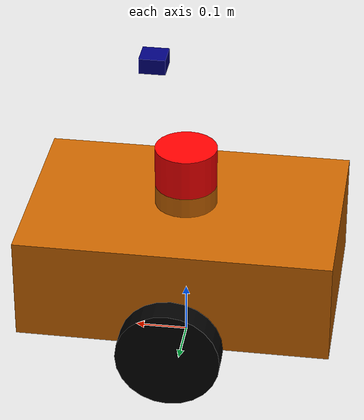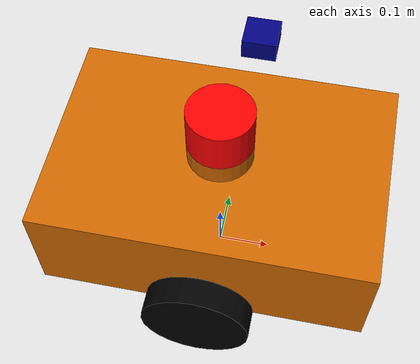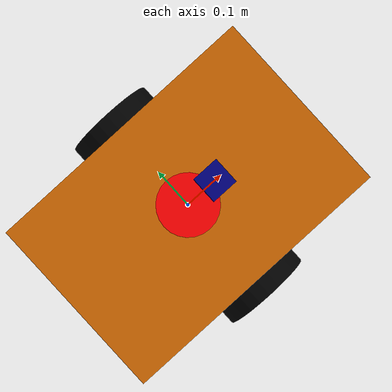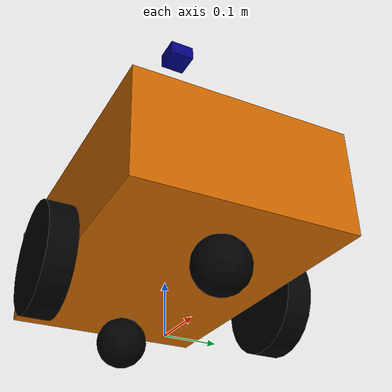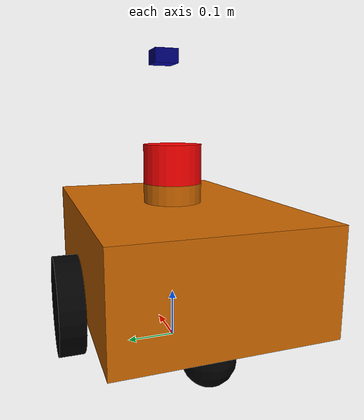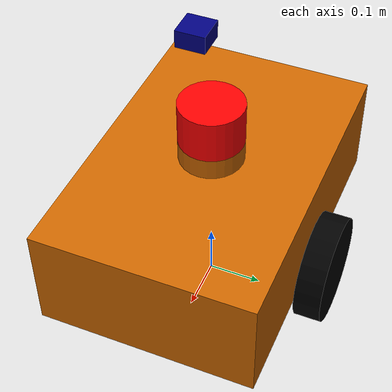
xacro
<?xml version="1.0"?>
<robot name="ros2_bot" xmlns:xacro="http://www.ros.org/wiki/xacro">

<!-- >>>>>>>>>>>>>>>>>>>>>>>>>>>  PROPERTY  <<<<<<<<<<<<<<<<<<<<<<<<<<<<< -->

    <xacro:property name="base_length" value="0.6" />
    <xacro:macro name="box_inertia" params="m x y z o_xyz o_rpy">
        <inertial>
            <mass value="${m}" />
            <origin xyz = "${o_xyz}" rpy = "${o_rpy}"/>
            <inertia ixx="${(m/12)*(y*y + z*z)}" ixy="0" ixz="0"
                     iyy="${(m/12)*(x*x + z*z)}" iyz="0"
                     izz="${(m/12)*(x*x + y*y)}"/>
        </inertial>
    </xacro:macro>

    <xacro:macro name="cylinder_inertia" params="m r l o_xyz o_rpy">
        <inertial>
            <mass value="${m}" />
            <origin xyz = "${o_xyz}" rpy = "${o_rpy}"/>
            <inertia ixx="${(m/12)*(3*r*r + l*l)}" ixy="0" ixz="0"
                     iyy="${(m/12)*(3*r*r + l*l)}" iyz="0"
                     izz="${(m/2)*(r*r)}"/>
        </inertial>
    </xacro:macro>

    <xacro:macro name="sphere_inertia" params="m r o_xyz o_rpy">
        <inertial>
            <mass value="${m}" />
            <origin xyz = "${o_xyz}" rpy = "${o_rpy}"/>
            <inertia ixx="${(2/5)*m*r*r}" ixy="0" ixz="0"
                     iyy="${(2/5)*m*r*r}" iyz="0"
                     izz="${(2/5)*m*r*r}"/>
        </inertial>
    </xacro:macro>

<!-- >>>>>>>>>>>>>>>>>>>>>>>>>>>  COLOUR  <<<<<<<<<<<<<<<<<<<<<<<<<<<<< -->

    <material name="Dark Orange">
        <color rgba="0.8 0.4 0.0 1"/>
    </material>

    <material name="Black">
        <color rgba="0 0 0 1"/>
    </material>

    <material name="Blue">
        <color rgba="0 0 0.5 1" />
    </material>

    <material name="Red">
        <color rgba="1.0 0 0 1" />
    </material>

<!-- >>>>>>>>>>>>>>>>>>>>>>>>>>>  LINK  <<<<<<<<<<<<<<<<<<<<<<<<<<<<< -->

    <link name="base_footprint" />

    <link name="base_link">
        <visual>
            <geometry>
                <box size="${base_length} 0.4 0.2" />
            </geometry>
            <origin xyz="0 0 0.1" rpy="0 0 0" />
            <material name="Dark Orange" />
        </visual>
        <collision>
            <geometry>
                <box size="${base_length} 0.4 0.2" />
            </geometry>
            <origin xyz="0 0 0.1" rpy="0 0 0" />
        </collision>
        <xacro:box_inertia m="0.1" x="${base_length}" y="0.4" z="0.2" o_xyz="0 0 1" o_rpy="0 0 0"/>
    </link>

    <link name="right_wheel_link">
        <visual>
            <geometry>
                <cylinder radius="0.1" length="0.05" />
            </geometry>
            <origin xyz="0 0 0" rpy="${pi / 2.0} 0 0" />
            <material name="Black" />
        </visual>
        <collision>
            <geometry>
                <sphere radius="0.1"/>
            </geometry>
            <origin xyz="0 0 0" rpy="${pi / 2.0} 0 0" />
        </collision>
        <xacro:cylinder_inertia m="0.5" r="0.1" l="0.05" o_xyz="0 0 0" o_rpy="${pi / 2.0} 0 0"/>
    </link>

    <link name="left_wheel_link">
        <visual>
            <geometry>
                <cylinder radius="0.1" length="0.05" />
            </geometry>
            <origin xyz="0 0 0" rpy="${pi / 2.0} 0 0" />
            <material name="Black" />
        </visual>
        <collision>
            <geometry>
                <sphere radius="0.1"/>
            </geometry>
            <origin xyz="0 0 0" rpy="${pi / 2.0} 0 0" />
        </collision>
        <xacro:cylinder_inertia m="0.5" r="0.1" l="0.05" o_xyz="0 0 0" o_rpy="${pi / 2.0} 0 0"/>
    </link>

    <link name="caster_wheel_link_1">
        <visual>
            <geometry>
                <sphere radius="0.05" />
            </geometry>
            <origin xyz="0 0 0" rpy="0 0 0" />
            <material name="Black" />
        </visual>
        <collision>
            <geometry>
                <sphere radius="0.05" />
            </geometry>
            <origin xyz="0 0 0" rpy="0 0 0" />
        </collision>
        <xacro:sphere_inertia m="0.05" r="0.05" o_xyz="0 0 0" o_rpy="0 0 0"/>
    </link>

    <link name="caster_wheel_link_2">
        <visual>
            <geometry>
                <sphere radius="0.05" />
            </geometry>
            <origin xyz="0 0 0" rpy="0 0 0" />
            <material name="Black" />
        </visual>
        <collision>
            <geometry>
                <sphere radius="0.05" />
            </geometry>
            <origin xyz="0 0 0" rpy="0 0 0" />
        </collision>
        <xacro:sphere_inertia m="0.05" r="0.05" o_xyz="0 0 0" o_rpy="0 0 0"/>
    </link>

    <link name="lidar_base">
        <visual>
            <geometry>
                <cylinder radius="0.06" length="0.08" />
            </geometry>
            <origin xyz="0 0 0" rpy="0 0 0" />
            <material name="Dark Orange" />
        </visual>
        <collision>
            <geometry>
                <cylinder radius="0.06" length="0.08"/>
            </geometry>
            <origin xyz="0 0 0" rpy="0 0 0" />
        </collision>
        <xacro:cylinder_inertia m="0.25" r="0.1" l="0.05" o_xyz="0 0 0.1" o_rpy="0 0 0"/>
    </link>

    <link name="lidar">
        <visual>
            <geometry>
                <cylinder radius="0.06" length="0.08" />
            </geometry>
            <origin xyz="0 0 0" rpy="0 0 0" />
            <material name="Red" />
        </visual>
        <collision>
            <geometry>
                <cylinder radius="0.06" length="0.08"/>
            </geometry>
            <origin xyz="0 0 0" rpy="0 0 0" />
        </collision>
        <xacro:cylinder_inertia m="0.25" r="0.1" l="0.05" o_xyz="0 0 0.1" o_rpy="0 0 0"/>
    </link>

<!-- >>>>>>>>>>>>>>>>>>>>>>>>>>>  JOINTS  <<<<<<<<<<<<<<<<<<<<<<<<<<<<< -->

    <joint name="base_joint" type="fixed">
        <parent link="base_footprint" />
        <child link="base_link" />
        <origin xyz="0 0 0.1" rpy="0 0 0"/>
    </joint>

    <joint name="base_right_wheel_joint" type="continuous">
        <parent link="base_link" />
        <child link="right_wheel_link" />
        <origin xyz="0 -0.225 0" rpy="0 0 0" />
        <axis xyz="0 1 0" />
    </joint>

    <joint name="base_left_wheel_joint" type="continuous">
        <parent link="base_link" />
        <child link="left_wheel_link" />
        <origin xyz="0 0.225 0" rpy="0 0 0" />
        <axis xyz="0 1 0" />
    </joint>

    <joint name="base_caster_wheel_1_joint" type="fixed">
        <parent link="base_link" />
        <child link="caster_wheel_link_1" />
        <origin xyz="0.2 0 -0.05" rpy="0 0 0" />
    </joint>

    <joint name="base_caster_wheel_2_joint" type="fixed">
        <parent link="base_link" />
        <child link="caster_wheel_link_2" />
        <origin xyz="-0.2 0 -0.05" rpy="0 0 0" />
    </joint>

    <joint name="lidar_base_joint" type="fixed">
        <parent link="base_link" />
        <child link="lidar_base" />
        <origin xyz="0 0 0.2" rpy="0 0 0" />
    </joint>

    <joint name="lidar_joint" type="fixed">
        <parent link="base_link" />
        <child link="lidar" />
        <origin xyz="0 0 0.28" rpy="0 0 0" />
    </joint>

<!-- >>>>>>>>>>>>>>>>>>>>>>>>>>>  CAMERA LINK AND JOINT  <<<<<<<<<<<<<<<<<<<<<<<<<<<<< -->

<!-- Simple camera link – no tilt at all -->
<link name="camera_link">
  <visual>
    <origin xyz="0 0 0" rpy="0 0 0"/>
    <geometry>
      <box size="0.05 0.05 0.03"/>
    </geometry>
    <material name="Blue"/>
  </visual>
</link>

<!-- Fixed joint – camera sits exactly on top, perfectly level -->
<joint name="camera_joint" type="fixed">
  <parent link="base_link"/>
  <child link="camera_link"/>
  <origin xyz="0.06 0 0.50" rpy="0 0 0"/>   <!-- only moved forward 5 cm and up 40 cm, NO pitch -->
</joint>

<!-- >>>>>>>>>>>>>>>>>>>>>>>>>>>  FRICTION  <<<<<<<<<<<<<<<<<<<<<<<<<<<<< -->

    <gazebo reference="caster_wheel_link_1">
        <mu1 value="0.0" />
        <mu2 value="0.0" />
    </gazebo>

    <gazebo reference="caster_wheel_link_2">
        <mu1 value="0.0" />
        <mu2 value="0.0" />
    </gazebo>

    <gazebo reference="right_wheel_link">
        <mu1>0.2</mu1>
        <mu2>20.0</mu2>
        <fdir1>1 0 0</fdir1>
        <slip1>0.0</slip1>
        <slip2>0.0</slip2>
    </gazebo>

    <gazebo reference="left_wheel_link">
        <mu1>0.2</mu1>
        <mu2>20.0</mu2>
        <fdir1>1 0 0</fdir1>
        <slip1>0.0</slip1>
        <slip2>0.0</slip2>
    </gazebo>

<!-- >>>>>>>>>>>>>>>>>>>>>>>>>>>  PLUGIN  <<<<<<<<<<<<<<<<<<<<<<<<<<<<< -->

<gazebo>

    <plugin filename="libignition-gazebo-joint-state-publisher-system.so" name="ignition::gazebo::systems::JointStatePublisher">
      <topic>/joint_states</topic>
    </plugin>

    <plugin
      filename="libignition-gazebo-sensors-system.so"
      name="ignition::gazebo::systems::Sensors">
      <render_engine>ogre2</render_engine>
    </plugin>

<!-- >>>>>>>>>>>>>>>>>>>>>>>>>>>  ENABLE FOR USE ODOM FROM DIFF-DRIVE  <<<<<<<<<<<<<<<<<<<<<<<<<<<<< -->

  <!-- FOR USE THIS COMMENT ODOM PLUGIN -->

<!-- >>>>>>>>>>>>>>>>>>>>>>>>>>>  ENABLE FOR USE ODOM FROM ODOM PLUGIN  <<<<<<<<<<<<<<<<<<<<<<<<<<<<< -->

    <plugin
        filename="libignition-gazebo-diff-drive-system.so"
        name="ignition::gazebo::systems::DiffDrive">
        <left_joint>base_left_wheel_joint</left_joint>
        <right_joint>base_right_wheel_joint</right_joint>
        <wheel_separation>0.45</wheel_separation>
        <wheel_diameter>0.1</wheel_diameter>
        <odom_publish_frequency>1</odom_publish_frequency>
        <topic>cmd_vel</topic>
    </plugin>

    <plugin filename="ignition-gazebo-odometry-publisher-system" name="ignition::gazebo::systems::OdometryPublisher">
      <odom_frame>odom</odom_frame>
      <robot_base_frame>base_footprint</robot_base_frame>
      <topic>/odom</topic>
      <left_joint>base_left_wheel_joint</left_joint>
      <right_joint>base_left_wheel_joint</right_joint>
      <wheel_separation>0.45</wheel_separation>
      <wheel_radius>0.05</wheel_radius>
      <publish_tf>true</publish_tf>
      <odom_publish_frequency>60</odom_publish_frequency>
      <tf_topic>/tf</tf_topic>
      <publish_rate>30</publish_rate>
    </plugin>

    <plugin filename="libignition-gazebo-imu-system.so"
            name="ignition::gazebo::systems::Imu">
    </plugin>

</gazebo>

<!-- >>>>>>>>>>>>>>>>>>>>>>>>>>>  SENSOR  <<<<<<<<<<<<<<<<<<<<<<<<<<<<< -->

<!-- Camera sensor -->
<gazebo reference="camera_link">
<sensor name="depth_camera" type="rgbd_camera">
        <always_on>true</always_on>
        <visualize>true</visualize>
        <update_rate>5.0</update_rate>
        <topic>depth_camera</topic>
        <gz_frame_id>camera_link</gz_frame_id>
        <camera>
          <horizontal_fov>1.047198</horizontal_fov>
          <image>
            <width>1280</width>
            <height>720</height>
          </image>
          <clip>
            <near>0.1</near>
            <far>15</far>
          </clip>
        </camera>
        <baseline>0.2</baseline>
        <pointCloudCutoff>0.5</pointCloudCutoff>
        <pointCloudCutoffMax>3.0</pointCloudCutoffMax>
        <distortionK1>0</distortionK1>
        <distortionK2>0</distortionK2>
        <distortionK3>0</distortionK3>
        <distortionT1>0</distortionT1>
        <distortionT2>0</distortionT2>
        <CxPrime>0</CxPrime>
        <Cx>0</Cx>
        <Cy>0</Cy>
        <focalLength>0</focalLength>
        <hackBaseline>0</hackBaseline>
      </sensor>
</gazebo>

<!-- 2D Lidar sensor -->
<gazebo reference="lidar">
  <sensor name="gpu_lidar" type="gpu_lidar">
  <pose relative_to='lidar'>0 0 0 0 0 0</pose>
  <ignition_frame_id>lidar</ignition_frame_id>
    <topic>/scan</topic>
    <update_rate>30</update_rate>
    <ray>
      <scan>
        <horizontal>
          <samples>360</samples>
          <resolution>1</resolution>
          <min_angle>-3.14</min_angle>
          <max_angle>3.14</max_angle>
        </horizontal>
      </scan>
      <range>
        <min>0.2</min>
        <max>10.0</max>
        <resolution>0.01</resolution>
      </range>
    </ray>
    <always_on>1</always_on>
    <visualize>true</visualize>
  </sensor>
</gazebo>

<!-- IMU sensor -->
<gazebo reference="base_link">
  <sensor name="imu_sensor" type="imu">
      <always_on>true</always_on>
      <ignition_frame_id>base_link</ignition_frame_id>
      <frame_id>base_link</frame_id>
      <update_rate>20</update_rate>
      <visualize>true</visualize>
      <topic>imu</topic>
  </sensor>
</gazebo>

<!-- 3D lidar sensor -->
<gazebo reference="lidar">
      <sensor name="lidar_sensor" type="gpu_ray">
        <pose>0 0 0.0 0 0 0</pose>
        <update_rate>20</update_rate>
        <visualize>true</visualize>
        <ignition_frame_id>lidar</ignition_frame_id>
        <topic>/lidar</topic>
        <ray>
          <scan>
            <horizontal>
              <samples>360</samples>
              <min_angle>-3.14</min_angle>
              <max_angle>3.14</max_angle>
            </horizontal>
            <vertical>
              <samples>16</samples>
              <min_angle>-0.0000</min_angle> <!-- -15 deg -->
              <max_angle>0.5000</max_angle>  <!-- +15 deg -->
            </vertical>
          </scan>
          <range>
            <min>0.2</min>
            <max>30.0</max>
            <resolution>0.01</resolution>
          </range>
        </ray>
        <always_on>1</always_on>
        <visualize>true</visualize>

      </sensor>
</gazebo>

</robot>
